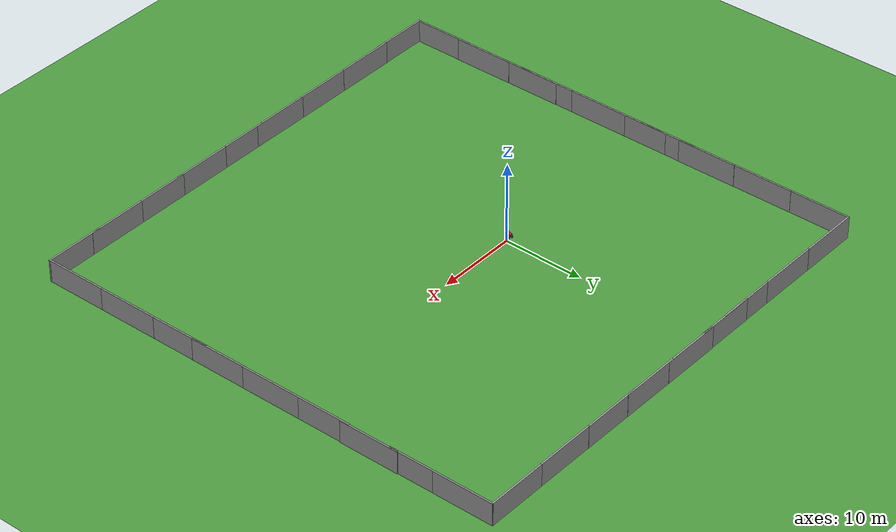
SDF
<sdf version="1.6">
 <world name="default">
  <light name="sun" type="directional">
   <pose>0 0 10 0 -0 0</pose>
   <diffuse>0.8 0.8 0.8 1</diffuse>
   <specular>0.2 0.2 0.2 1</specular>
   <attenuation>
    <range>1000</range>
    <constant>0.9</constant>
    <linear>0.01</linear>
    <quadratic>0.001</quadratic>
   </attenuation>
   <direction>-0.5 0.1 -0.9</direction>
  </light>
  <gravity>0 0 -9.8</gravity>
  <magnetic_field>6e-06 2.3e-05 -4.2e-05</magnetic_field>
  <atmosphere type="adiabatic"/>
  <physics name="default_physics" default="0" type="ode">
   <max_step_size>0.001</max_step_size>
   <real_time_factor>1</real_time_factor>
   <real_time_update_rate>1000</real_time_update_rate>
  </physics>
  <scene><ambient>0.4 0.4 0.4 1</ambient><background>0.7 0.7 0.7 1</background><shadows>1</shadows></scene>
  <spherical_coordinates>
   <surface_model>EARTH_WGS84</surface_model>
   <latitude_deg>0</latitude_deg>
   <longitude_deg>0</longitude_deg>
   <elevation>0</elevation>
   <heading_deg>0</heading_deg>
  </spherical_coordinates>
  <model name="vrc_driving_terrain">
   <static>1</static>
   <link name="grass_plane">
    <collision name="collision">
     <geometry><plane><normal>0 0 1</normal><size>60 60</size></plane></geometry>
     <surface><friction><ode><mu>0.5</mu><mu2>0.5</mu2></ode></friction></surface>
    </collision>
    <visual name="visual_0">
     <cast_shadows>0</cast_shadows>
     <geometry><plane><normal>0 0 1</normal><size>60 60</size></plane></geometry>
     <material>
      <script>
       <uri>model://forest/vrc_driving_terrain/materials/scripts</uri>
       <uri>model://forest/vrc_driving_terrain/materials/textures</uri>
       <name>vrc/grass</name>
      </script>
     </material>
    </visual>
   </link>
   <pose>6.27224 -2.36963 0 0 -0 0</pose>
  </model>
  <model name="grey_wall_clone_10_clone_clone_clone_11_clone_clone_6">
   <static>1</static>
   <link name="link">
    <pose>0 0 1.4 0 -0 0</pose>
    <collision name="collision"><geometry><box><size>7.5 0.2 2.8</size></box></geometry></collision>
    <visual name="visual">
     <cast_shadows>0</cast_shadows>
     <geometry><box><size>7.5 0.2 2.8</size></box></geometry>
     <material>
      <script>
       <uri>model://forest/grey_wall/materials/scripts</uri>
       <uri>model://forest/grey_wall/materials/textures</uri>
       <name>vrc/grey_wall</name>
      </script>
     </material>
    </visual>
   </link>
   <pose>-20.0689 -32.377 0 0 -0 0</pose>
  </model>
  <model name="grey_wall_clone_10_clone_clone_clone_11_clone_clone_7">
   <static>1</static>
   <link name="link">
    <pose>0 0 1.4 0 -0 0</pose>
    <collision name="collision"><geometry><box><size>7.5 0.2 2.8</size></box></geometry></collision>
    <visual name="visual">
     <cast_shadows>0</cast_shadows>
     <geometry><box><size>7.5 0.2 2.8</size></box></geometry>
     <material>
      <script>
       <uri>model://forest/grey_wall/materials/scripts</uri>
       <uri>model://forest/grey_wall/materials/textures</uri>
       <name>vrc/grey_wall</name>
      </script>
     </material>
    </visual>
   </link>
   <pose>-14.0469 -32.337 0 0 -0 0</pose>
  </model>
  <model name="grey_wall_clone_10_clone_clone_clone_11_clone_clone_8">
   <static>1</static>
   <link name="link">
    <pose>0 0 1.4 0 -0 0</pose>
    <collision name="collision"><geometry><box><size>7.5 0.2 2.8</size></box></geometry></collision>
    <visual name="visual">
     <cast_shadows>0</cast_shadows>
     <geometry><box><size>7.5 0.2 2.8</size></box></geometry>
     <material>
      <script>
       <uri>model://forest/grey_wall/materials/scripts</uri>
       <uri>model://forest/grey_wall/materials/textures</uri>
       <name>vrc/grey_wall</name>
      </script>
     </material>
    </visual>
   </link>
   <pose>-6.98097 -32.3403 0 0 -0 0</pose>
  </model>
  <model name="grey_wall_clone_10_clone_clone_clone_11_clone_clone_9">
   <static>1</static>
   <link name="link">
    <pose>0 0 1.4 0 -0 0</pose>
    <collision name="collision"><geometry><box><size>7.5 0.2 2.8</size></box></geometry></collision>
    <visual name="visual">
     <cast_shadows>0</cast_shadows>
     <geometry><box><size>7.5 0.2 2.8</size></box></geometry>
     <material>
      <script>
       <uri>model://forest/grey_wall/materials/scripts</uri>
       <uri>model://forest/grey_wall/materials/textures</uri>
       <name>vrc/grey_wall</name>
      </script>
     </material>
    </visual>
   </link>
   <pose>0.3838 -32.3377 0 0 -0 0</pose>
  </model>
  <model name="grey_wall_clone_10_clone_clone_clone_11_clone_clone_10">
   <static>1</static>
   <link name="link">
    <pose>0 0 1.4 0 -0 0</pose>
    <collision name="collision"><geometry><box><size>7.5 0.2 2.8</size></box></geometry></collision>
    <visual name="visual">
     <cast_shadows>0</cast_shadows>
     <geometry><box><size>7.5 0.2 2.8</size></box></geometry>
     <material>
      <script>
       <uri>model://forest/grey_wall/materials/scripts</uri>
       <uri>model://forest/grey_wall/materials/textures</uri>
       <name>vrc/grey_wall</name>
      </script>
     </material>
    </visual>
   </link>
   <pose>7.10117 -32.3402 0 0 -0 0</pose>
  </model>
  <model name="grey_wall_clone_10_clone_clone_clone_11_clone_clone_11">
   <static>1</static>
   <link name="link">
    <pose>0 0 1.4 0 -0 0</pose>
    <collision name="collision"><geometry><box><size>7.5 0.2 2.8</size></box></geometry></collision>
    <visual name="visual">
     <cast_shadows>0</cast_shadows>
     <geometry><box><size>7.5 0.2 2.8</size></box></geometry>
     <material>
      <script>
       <uri>model://forest/grey_wall/materials/scripts</uri>
       <uri>model://forest/grey_wall/materials/textures</uri>
       <name>vrc/grey_wall</name>
      </script>
     </material>
    </visual>
   </link>
   <pose>19.7031 -32.3238 0 0 -0 0</pose>
  </model>
  <model name="grey_wall_clone_10_clone_clone_clone_11_clone_clone_12">
   <static>1</static>
   <link name="link">
    <pose>0 0 1.4 0 -0 0</pose>
    <collision name="collision"><geometry><box><size>7.5 0.2 2.8</size></box></geometry></collision>
    <visual name="visual">
     <cast_shadows>0</cast_shadows>
     <geometry><box><size>7.5 0.2 2.8</size></box></geometry>
     <material>
      <script>
       <uri>model://forest/grey_wall/materials/scripts</uri>
       <uri>model://forest/grey_wall/materials/textures</uri>
       <name>vrc/grey_wall</name>
      </script>
     </material>
    </visual>
   </link>
   <pose>13.0436 -32.3322 0 0 -0 0</pose>
  </model>
  <model name="grey_wall_clone_10_clone_clone_clone_11_clone_clone_14">
   <static>1</static>
   <link name="link">
    <pose>0 0 1.4 0 -0 0</pose>
    <collision name="collision"><geometry><box><size>7.5 0.2 2.8</size></box></geometry></collision>
    <visual name="visual">
     <cast_shadows>0</cast_shadows>
     <geometry><box><size>7.5 0.2 2.8</size></box></geometry>
     <material>
      <script>
       <uri>model://forest/grey_wall/materials/scripts</uri>
       <uri>model://forest/grey_wall/materials/textures</uri>
       <name>vrc/grey_wall</name>
      </script>
     </material>
    </visual>
   </link>
   <pose>32.4753 -32.3237 0 0 -0 0</pose>
  </model>
  <model name="grey_wall_clone_10_clone_0_clone_4_clone">
   <static>1</static>
   <link name="link">
    <pose>0 0 1.4 0 -0 0</pose>
    <collision name="collision"><geometry><box><size>7.5 0.2 2.8</size></box></geometry></collision>
    <visual name="visual">
     <cast_shadows>0</cast_shadows>
     <geometry><box><size>7.5 0.2 2.8</size></box></geometry>
     <material>
      <script>
       <uri>model://forest/grey_wall/materials/scripts</uri>
       <uri>model://forest/grey_wall/materials/textures</uri>
       <name>vrc/grey_wall</name>
      </script>
     </material>
    </visual>
   </link>
   <pose>36.1029 -28.5226 0 0 0 -1.56932</pose>
  </model>
  <model name="grey_wall_clone_10_clone_0_clone_3_clone">
   <static>1</static>
   <link name="link">
    <pose>0 0 1.4 0 -0 0</pose>
    <collision name="collision"><geometry><box><size>7.5 0.2 2.8</size></box></geometry></collision>
    <visual name="visual">
     <cast_shadows>0</cast_shadows>
     <geometry><box><size>7.5 0.2 2.8</size></box></geometry>
     <material>
      <script>
       <uri>model://forest/grey_wall/materials/scripts</uri>
       <uri>model://forest/grey_wall/materials/textures</uri>
       <name>vrc/grey_wall</name>
      </script>
     </material>
    </visual>
   </link>
   <pose>36.1009 -21.0546 0 0 0 -1.56932</pose>
  </model>
  <model name="grey_wall_clone_10_clone_0_clone_2_clone">
   <static>1</static>
   <link name="link">
    <pose>0 0 1.4 0 -0 0</pose>
    <collision name="collision"><geometry><box><size>7.5 0.2 2.8</size></box></geometry></collision>
    <visual name="visual">
     <cast_shadows>0</cast_shadows>
     <geometry><box><size>7.5 0.2 2.8</size></box></geometry>
     <material>
      <script>
       <uri>model://forest/grey_wall/materials/scripts</uri>
       <uri>model://forest/grey_wall/materials/textures</uri>
       <name>vrc/grey_wall</name>
      </script>
     </material>
    </visual>
   </link>
   <pose>36.0909 -13.5753 0 0 0 -1.56932</pose>
  </model>
  <model name="grey_wall_clone_10_clone_0_clone_1_clone">
   <static>1</static>
   <link name="link">
    <pose>0 0 1.4 0 -0 0</pose>
    <collision name="collision"><geometry><box><size>7.5 0.2 2.8</size></box></geometry></collision>
    <visual name="visual">
     <cast_shadows>0</cast_shadows>
     <geometry><box><size>7.5 0.2 2.8</size></box></geometry>
     <material>
      <script>
       <uri>model://forest/grey_wall/materials/scripts</uri>
       <uri>model://forest/grey_wall/materials/textures</uri>
       <name>vrc/grey_wall</name>
      </script>
     </material>
    </visual>
   </link>
   <pose>36.1079 -8.10384 0 0 0 -1.56932</pose>
  </model>
  <model name="grey_wall_clone_10_clone_0_clone_0_clone">
   <static>1</static>
   <link name="link">
    <pose>0 0 1.4 0 -0 0</pose>
    <collision name="collision"><geometry><box><size>7.5 0.2 2.8</size></box></geometry></collision>
    <visual name="visual">
     <cast_shadows>0</cast_shadows>
     <geometry><box><size>7.5 0.2 2.8</size></box></geometry>
     <material>
      <script>
       <uri>model://forest/grey_wall/materials/scripts</uri>
       <uri>model://forest/grey_wall/materials/textures</uri>
       <name>vrc/grey_wall</name>
      </script>
     </material>
    </visual>
   </link>
   <pose>36.1171 -1.08216 0 0 0 -1.56932</pose>
  </model>
  <model name="grey_wall_clone_10_clone_0_clone_clone">
   <static>1</static>
   <link name="link">
    <pose>0 0 1.4 0 -0 0</pose>
    <collision name="collision"><geometry><box><size>7.5 0.2 2.8</size></box></geometry></collision>
    <visual name="visual">
     <cast_shadows>0</cast_shadows>
     <geometry><box><size>7.5 0.2 2.8</size></box></geometry>
     <material>
      <script>
       <uri>model://forest/grey_wall/materials/scripts</uri>
       <uri>model://forest/grey_wall/materials/textures</uri>
       <name>vrc/grey_wall</name>
      </script>
     </material>
    </visual>
   </link>
   <pose>36.1055 5.65363 0 0 0 -1.56932</pose>
  </model>
  <model name="grey_wall_clone_10_clone_0_clone_12">
   <static>1</static>
   <link name="link">
    <pose>0 0 1.4 0 -0 0</pose>
    <collision name="collision"><geometry><box><size>7.5 0.2 2.8</size></box></geometry></collision>
    <visual name="visual">
     <cast_shadows>0</cast_shadows>
     <geometry><box><size>7.5 0.2 2.8</size></box></geometry>
     <material>
      <script>
       <uri>model://forest/grey_wall/materials/scripts</uri>
       <uri>model://forest/grey_wall/materials/textures</uri>
       <name>vrc/grey_wall</name>
      </script>
     </material>
    </visual>
   </link>
   <pose>36.1794 12.0088 0 0 0 -1.56932</pose>
  </model>
  <model name="grey_wall_clone_10_clone_0_clone_13">
   <static>1</static>
   <link name="link">
    <pose>0 0 1.4 0 -0 0</pose>
    <collision name="collision"><geometry><box><size>7.5 0.2 2.8</size></box></geometry></collision>
    <visual name="visual">
     <cast_shadows>0</cast_shadows>
     <geometry><box><size>7.5 0.2 2.8</size></box></geometry>
     <material>
      <script>
       <uri>model://forest/grey_wall/materials/scripts</uri>
       <uri>model://forest/grey_wall/materials/textures</uri>
       <name>vrc/grey_wall</name>
      </script>
     </material>
    </visual>
   </link>
   <pose>36.0952 23.8909 0 0 0 -1.56932</pose>
  </model>
  <model name="grey_wall_clone_10_clone_clone_6">
   <static>1</static>
   <link name="link">
    <pose>0 0 1.4 0 -0 0</pose>
    <collision name="collision"><geometry><box><size>7.5 0.2 2.8</size></box></geometry></collision>
    <visual name="visual">
     <cast_shadows>0</cast_shadows>
     <geometry><box><size>7.5 0.2 2.8</size></box></geometry>
     <material>
      <script>
       <uri>model://forest/grey_wall/materials/scripts</uri>
       <uri>model://forest/grey_wall/materials/textures</uri>
       <name>vrc/grey_wall</name>
      </script>
     </material>
    </visual>
   </link>
   <pose>32.3871 27.6022 0 0 -0 0</pose>
  </model>
  <model name="grey_wall_clone_10_clone_clone_7">
   <static>1</static>
   <link name="link">
    <pose>0 0 1.4 0 -0 0</pose>
    <collision name="collision"><geometry><box><size>7.5 0.2 2.8</size></box></geometry></collision>
    <visual name="visual">
     <cast_shadows>0</cast_shadows>
     <geometry><box><size>7.5 0.2 2.8</size></box></geometry>
     <material>
      <script>
       <uri>model://forest/grey_wall/materials/scripts</uri>
       <uri>model://forest/grey_wall/materials/textures</uri>
       <name>vrc/grey_wall</name>
      </script>
     </material>
    </visual>
   </link>
   <pose>24.9042 27.5875 0 0 -0 0</pose>
  </model>
  <model name="grey_wall_clone_10_clone_clone_8">
   <static>1</static>
   <link name="link">
    <pose>0 0 1.4 0 -0 0</pose>
    <collision name="collision"><geometry><box><size>7.5 0.2 2.8</size></box></geometry></collision>
    <visual name="visual">
     <cast_shadows>0</cast_shadows>
     <geometry><box><size>7.5 0.2 2.8</size></box></geometry>
     <material>
      <script>
       <uri>model://forest/grey_wall/materials/scripts</uri>
       <uri>model://forest/grey_wall/materials/textures</uri>
       <name>vrc/grey_wall</name>
      </script>
     </material>
    </visual>
   </link>
   <pose>17.5062 27.6094 0 0 -0 0</pose>
  </model>
  <model name="grey_wall_clone_10_clone_clone_9">
   <static>1</static>
   <link name="link">
    <pose>0 0 1.4 0 -0 0</pose>
    <collision name="collision"><geometry><box><size>7.5 0.2 2.8</size></box></geometry></collision>
    <visual name="visual">
     <cast_shadows>0</cast_shadows>
     <geometry><box><size>7.5 0.2 2.8</size></box></geometry>
     <material>
      <script>
       <uri>model://forest/grey_wall/materials/scripts</uri>
       <uri>model://forest/grey_wall/materials/textures</uri>
       <name>vrc/grey_wall</name>
      </script>
     </material>
    </visual>
   </link>
   <pose>11.1913 27.6263 0 0 -0 0</pose>
  </model>
  <model name="grey_wall_clone_10_clone_clone_10">
   <static>1</static>
   <link name="link">
    <pose>0 0 1.4 0 -0 0</pose>
    <collision name="collision"><geometry><box><size>7.5 0.2 2.8</size></box></geometry></collision>
    <visual name="visual">
     <cast_shadows>0</cast_shadows>
     <geometry><box><size>7.5 0.2 2.8</size></box></geometry>
     <material>
      <script>
       <uri>model://forest/grey_wall/materials/scripts</uri>
       <uri>model://forest/grey_wall/materials/textures</uri>
       <name>vrc/grey_wall</name>
      </script>
     </material>
    </visual>
   </link>
   <pose>4.39213 27.6355 0 0 -0 0</pose>
  </model>
  <model name="grey_wall_clone_10_clone_clone_11">
   <static>1</static>
   <link name="link">
    <pose>0 0 1.4 0 -0 0</pose>
    <collision name="collision"><geometry><box><size>7.5 0.2 2.8</size></box></geometry></collision>
    <visual name="visual">
     <cast_shadows>0</cast_shadows>
     <geometry><box><size>7.5 0.2 2.8</size></box></geometry>
     <material>
      <script>
       <uri>model://forest/grey_wall/materials/scripts</uri>
       <uri>model://forest/grey_wall/materials/textures</uri>
       <name>vrc/grey_wall</name>
      </script>
     </material>
    </visual>
   </link>
   <pose>-5.36662 27.5533 0 0 -0 0</pose>
  </model>
  <model name="grey_wall_clone_10_clone_clone_12">
   <static>1</static>
   <link name="link">
    <pose>0 0 1.4 0 -0 0</pose>
    <collision name="collision"><geometry><box><size>7.5 0.2 2.8</size></box></geometry></collision>
    <visual name="visual">
     <cast_shadows>0</cast_shadows>
     <geometry><box><size>7.5 0.2 2.8</size></box></geometry>
     <material>
      <script>
       <uri>model://forest/grey_wall/materials/scripts</uri>
       <uri>model://forest/grey_wall/materials/textures</uri>
       <name>vrc/grey_wall</name>
      </script>
     </material>
    </visual>
   </link>
   <pose>-12.7191 27.5554 0 0 -0 0</pose>
  </model>
  <model name="grey_wall_clone_10_clone_clone_14">
   <static>1</static>
   <link name="link">
    <pose>0 0 1.4 0 -0 0</pose>
    <collision name="collision"><geometry><box><size>7.5 0.2 2.8</size></box></geometry></collision>
    <visual name="visual">
     <cast_shadows>0</cast_shadows>
     <geometry><box><size>7.5 0.2 2.8</size></box></geometry>
     <material>
      <script>
       <uri>model://forest/grey_wall/materials/scripts</uri>
       <uri>model://forest/grey_wall/materials/textures</uri>
       <name>vrc/grey_wall</name>
      </script>
     </material>
    </visual>
   </link>
   <pose>-20.152 27.5651 0 0 -0 0</pose>
  </model>
  <model name="grey_wall_clone_10_clone_0_clone_5_clone_12_clone_8">
   <static>1</static>
   <link name="link">
    <pose>0 0 1.4 0 -0 0</pose>
    <collision name="collision"><geometry><box><size>7.5 0.2 2.8</size></box></geometry></collision>
    <visual name="visual">
     <cast_shadows>0</cast_shadows>
     <geometry><box><size>7.5 0.2 2.8</size></box></geometry>
     <material>
      <script>
       <uri>model://forest/grey_wall/materials/scripts</uri>
       <uri>model://forest/grey_wall/materials/textures</uri>
       <name>vrc/grey_wall</name>
      </script>
     </material>
    </visual>
   </link>
   <pose>-23.8162 23.8834 0 0 0 -1.56932</pose>
  </model>
  <model name="grey_wall_clone_10_clone_0_clone_5_clone_12_clone_9">
   <static>1</static>
   <link name="link">
    <pose>0 0 1.4 0 -0 0</pose>
    <collision name="collision"><geometry><box><size>7.5 0.2 2.8</size></box></geometry></collision>
    <visual name="visual">
     <cast_shadows>0</cast_shadows>
     <geometry><box><size>7.5 0.2 2.8</size></box></geometry>
     <material>
      <script>
       <uri>model://forest/grey_wall/materials/scripts</uri>
       <uri>model://forest/grey_wall/materials/textures</uri>
       <name>vrc/grey_wall</name>
      </script>
     </material>
    </visual>
   </link>
   <pose>-23.7899 16.4201 0 0 0 -1.56932</pose>
  </model>
  <model name="grey_wall_clone_10_clone_0_clone_5_clone_12_clone_10">
   <static>1</static>
   <link name="link">
    <pose>0 0 1.4 0 -0 0</pose>
    <collision name="collision"><geometry><box><size>7.5 0.2 2.8</size></box></geometry></collision>
    <visual name="visual">
     <cast_shadows>0</cast_shadows>
     <geometry><box><size>7.5 0.2 2.8</size></box></geometry>
     <material>
      <script>
       <uri>model://forest/grey_wall/materials/scripts</uri>
       <uri>model://forest/grey_wall/materials/textures</uri>
       <name>vrc/grey_wall</name>
      </script>
     </material>
    </visual>
   </link>
   <pose>-23.7486 8.93927 0 0 0 -1.56932</pose>
  </model>
  <model name="grey_wall_clone_10_clone_0_clone_5_clone_12_clone_11">
   <static>1</static>
   <link name="link">
    <pose>0 0 1.4 0 -0 0</pose>
    <collision name="collision"><geometry><box><size>7.5 0.2 2.8</size></box></geometry></collision>
    <visual name="visual">
     <cast_shadows>0</cast_shadows>
     <geometry><box><size>7.5 0.2 2.8</size></box></geometry>
     <material>
      <script>
       <uri>model://forest/grey_wall/materials/scripts</uri>
       <uri>model://forest/grey_wall/materials/textures</uri>
       <name>vrc/grey_wall</name>
      </script>
     </material>
    </visual>
   </link>
   <pose>-23.7488 -0.411981 0 0 0 -1.56932</pose>
  </model>
  <model name="grey_wall_clone_10_clone_0_clone_5_clone_12_clone_12">
   <static>1</static>
   <link name="link">
    <pose>0 0 1.4 0 -0 0</pose>
    <collision name="collision"><geometry><box><size>7.5 0.2 2.8</size></box></geometry></collision>
    <visual name="visual">
     <cast_shadows>0</cast_shadows>
     <geometry><box><size>7.5 0.2 2.8</size></box></geometry>
     <material>
      <script>
       <uri>model://forest/grey_wall/materials/scripts</uri>
       <uri>model://forest/grey_wall/materials/textures</uri>
       <name>vrc/grey_wall</name>
      </script>
     </material>
    </visual>
   </link>
   <pose>-23.7368 -6.04779 0 0 0 -1.56932</pose>
  </model>
  <model name="grey_wall_clone_10_clone_0_clone_5_clone_12_clone_13">
   <static>1</static>
   <link name="link">
    <pose>0 0 1.4 0 -0 0</pose>
    <collision name="collision"><geometry><box><size>7.5 0.2 2.8</size></box></geometry></collision>
    <visual name="visual">
     <cast_shadows>0</cast_shadows>
     <geometry><box><size>7.5 0.2 2.8</size></box></geometry>
     <material>
      <script>
       <uri>model://forest/grey_wall/materials/scripts</uri>
       <uri>model://forest/grey_wall/materials/textures</uri>
       <name>vrc/grey_wall</name>
      </script>
     </material>
    </visual>
   </link>
   <pose>-23.7298 -13.5026 0 0 0 -1.56932</pose>
  </model>
  <model name="grey_wall_clone_10_clone_0_clone_5_clone_12_clone_14">
   <static>1</static>
   <link name="link">
    <pose>0 0 1.4 0 -0 0</pose>
    <collision name="collision"><geometry><box><size>7.5 0.2 2.8</size></box></geometry></collision>
    <visual name="visual">
     <cast_shadows>0</cast_shadows>
     <geometry><box><size>7.5 0.2 2.8</size></box></geometry>
     <material>
      <script>
       <uri>model://forest/grey_wall/materials/scripts</uri>
       <uri>model://forest/grey_wall/materials/textures</uri>
       <name>vrc/grey_wall</name>
      </script>
     </material>
    </visual>
   </link>
   <pose>-23.7024 -28.5538 0 0 0 -1.56932</pose>
  </model>
  <model name="grey_wall_clone_10_clone_0_clone_5_clone_12_clone_15">
   <static>1</static>
   <link name="link">
    <pose>0 0 1.4 0 -0 0</pose>
    <collision name="collision"><geometry><box><size>7.5 0.2 2.8</size></box></geometry></collision>
    <visual name="visual">
     <cast_shadows>0</cast_shadows>
     <geometry><box><size>7.5 0.2 2.8</size></box></geometry>
     <material>
      <script>
       <uri>model://forest/grey_wall/materials/scripts</uri>
       <uri>model://forest/grey_wall/materials/textures</uri>
       <name>vrc/grey_wall</name>
      </script>
     </material>
    </visual>
   </link>
   <pose>-23.6973 -15.7824 0 0 0 -1.56932</pose>
  </model>
  <audio><device>default</device></audio>
  <model name="camera">
   <link name="camera">
    <inertial>
     <mass>1e-05</mass>
     <inertia><ixx>1e-06</ixx><ixy>0</ixy><ixz>0</ixz><iyy>1e-06</iyy><iyz>0</iyz><izz>1e-06</izz></inertia>
    </inertial>
    <collision name="camera_collision"><geometry><box><size>0.001 0.001 0.001</size></box></geometry></collision>
    <visual name="camera_visual">
     <geometry><box><size>0.001 0.001 0.001</size></box></geometry>
     <material><script><uri>__default__</uri><name>__default__</name></script></material>
    </visual>
    <sensor name="camera" type="camera">
     <update_rate>15</update_rate>
     <camera name="head">
      <horizontal_fov>2</horizontal_fov>
      <image><width>320</width><height>180</height><format>R8G8B8</format></image>
      <clip><near>0.1</near><far>200</far></clip>
     </camera>
     <plugin name="camera_controller" filename="libgazebo_ros_camera.so">
      <alwaysOn>1</alwaysOn>
      <updateRate>0.0</updateRate>
      <cameraName>camera</cameraName>
      <imageTopicName>image</imageTopicName>
      <cameraInfoTopicName>camera_info</cameraInfoTopicName>
      <frameName>camera</frameName>
      <hackBaseline>0.0</hackBaseline>
      <distortionK1>0.0</distortionK1>
      <distortionK2>0.0</distortionK2>
      <distortionK3>0.0</distortionK3>
      <distortionT1>0.0</distortionT1>
      <distortionT2>0.0</distortionT2>
      <robotNamespace>/</robotNamespace>
     </plugin>
    </sensor>
   </link>
   <pose>-0.766021 -0.279987 0.749372 -2e-06 3e-06 -0.389001</pose>
  </model>
  <model name="robot">
   <link name="base_origin">
    <inertial>
     <pose>0 0 -0.5125 0 -0 0</pose>
     <mass>6e-05</mass>
     <inertia>
      <ixx>9.94687e-06</ixx>
      <ixy>0</ixy>
      <ixz>0</ixz>
      <iyy>9.04688e-06</iyy>
      <iyz>-1.58819e-23</iyz>
      <izz>1.01e-05</izz>
     </inertia>
    </inertial>
    <visual name="base_origin_fixed_joint_lump__base_link_visual">
     <pose>0 0 -0.5 0 -0 0</pose>
     <geometry><box><size>0.6 0.4 0.3</size></box></geometry>
     <material>
      <script><name>Gazebo/Red</name><uri>file://media/materials/scripts/gazebo.material</uri></script>
     </material>
    </visual>
    <visual name="base_origin_fixed_joint_lump__left_front_wheel_visual_1">
     <pose>0.2 -0.25 -0.6 1.57 -0 0</pose>
     <geometry><cylinder><length>0.1</length><radius>0.15</radius></cylinder></geometry>
     <material>
      <script><name>Gazebo/Black</name><uri>file://media/materials/scripts/gazebo.material</uri></script>
     </material>
    </visual>
    <visual name="base_origin_fixed_joint_lump__left_rear_wheel_visual_2">
     <pose>-0.2 -0.25 -0.6 1.57 -0 0</pose>
     <geometry><cylinder><length>0.1</length><radius>0.15</radius></cylinder></geometry>
     <material>
      <script><name>Gazebo/Black</name><uri>file://media/materials/scripts/gazebo.material</uri></script>
     </material>
    </visual>
    <visual name="base_origin_fixed_joint_lump__right_rear_wheel_visual_3">
     <pose>-0.2 0.25 -0.6 -1.57 0 0</pose>
     <geometry><cylinder><length>0.1</length><radius>0.15</radius></cylinder></geometry>
     <material>
      <script><name>Gazebo/Black</name><uri>file://media/materials/scripts/gazebo.material</uri></script>
     </material>
    </visual>
    <visual name="base_origin_fixed_joint_lump__right_front_wheel_visual_4">
     <pose>0.2 0.25 -0.6 -1.57 0 0</pose>
     <geometry><cylinder><length>0.1</length><radius>0.15</radius></cylinder></geometry>
     <material>
      <script><name>Gazebo/Black</name><uri>file://media/materials/scripts/gazebo.material</uri></script>
     </material>
    </visual>
    <visual name="base_origin_fixed_joint_lump__lidar_holder_visual_5">
     <pose>0 0 -0.175 0 -0 0</pose>
     <geometry><cylinder><length>0.35</length><radius>0.03</radius></cylinder></geometry>
     <material>
      <script><name>Gazebo/Black</name><uri>file://media/materials/scripts/gazebo.material</uri></script>
     </material>
    </visual>
   </link>
   <pose>-0.766021 -0.279987 0.749902 0 0 -0.389001</pose>
  </model>
  <model name="grey_wall_clone_10_clone_clone_11_clone">
   <static>1</static>
   <link name="link">
    <pose>0 0 1.4 0 -0 0</pose>
    <collision name="collision"><geometry><box><size>7.5 0.2 2.8</size></box></geometry></collision>
    <visual name="visual">
     <cast_shadows>0</cast_shadows>
     <geometry><box><size>7.5 0.2 2.8</size></box></geometry>
     <material>
      <script>
       <uri>model://forest/grey_wall/materials/scripts</uri>
       <uri>model://forest/grey_wall/materials/textures</uri>
       <name>vrc/grey_wall</name>
      </script>
     </material>
    </visual>
   </link>
   <pose>-1.59891 27.5825 0 0 -0 0</pose>
  </model>
  <model name="grey_wall_clone_10_clone_0_clone_13_clone">
   <static>1</static>
   <link name="link">
    <pose>0 0 1.4 0 -0 0</pose>
    <collision name="collision"><geometry><box><size>7.5 0.2 2.8</size></box></geometry></collision>
    <visual name="visual">
     <cast_shadows>0</cast_shadows>
     <geometry><box><size>7.5 0.2 2.8</size></box></geometry>
     <material>
      <script>
       <uri>model://forest/grey_wall/materials/scripts</uri>
       <uri>model://forest/grey_wall/materials/textures</uri>
       <name>vrc/grey_wall</name>
      </script>
     </material>
    </visual>
   </link>
   <pose>36.0988 18.3028 0 0 0 -1.56932</pose>
  </model>
  <model name="grey_wall_clone_10_clone_clone_clone_11_clone_clone_12_clone">
   <static>1</static>
   <link name="link">
    <pose>0 0 1.4 0 -0 0</pose>
    <collision name="collision"><geometry><box><size>7.5 0.2 2.8</size></box></geometry></collision>
    <visual name="visual">
     <cast_shadows>0</cast_shadows>
     <geometry><box><size>7.5 0.2 2.8</size></box></geometry>
     <material>
      <script>
       <uri>model://forest/grey_wall/materials/scripts</uri>
       <uri>model://forest/grey_wall/materials/textures</uri>
       <name>vrc/grey_wall</name>
      </script>
     </material>
    </visual>
   </link>
   <pose>26.1967 -32.3206 0 0 -0 0</pose>
  </model>
  <model name="grey_wall_clone_10_clone_0_clone_5_clone_12_clone_14_clone">
   <static>1</static>
   <link name="link">
    <pose>0 0 1.4 0 -0 0</pose>
    <collision name="collision"><geometry><box><size>7.5 0.2 2.8</size></box></geometry></collision>
    <visual name="visual">
     <cast_shadows>0</cast_shadows>
     <geometry><box><size>7.5 0.2 2.8</size></box></geometry>
     <material>
      <script>
       <uri>model://forest/grey_wall/materials/scripts</uri>
       <uri>model://forest/grey_wall/materials/textures</uri>
       <name>vrc/grey_wall</name>
      </script>
     </material>
    </visual>
   </link>
   <pose>-23.6719 -22.6472 0 0 0 -1.56932</pose>
  </model>
  <model name="grey_wall_clone_10_clone_0_clone_5_clone_12_clone_11_clone">
   <static>1</static>
   <link name="link">
    <pose>0 0 1.4 0 -0 0</pose>
    <collision name="collision"><geometry><box><size>7.5 0.2 2.8</size></box></geometry></collision>
    <visual name="visual">
     <cast_shadows>0</cast_shadows>
     <geometry><box><size>7.5 0.2 2.8</size></box></geometry>
     <material>
      <script>
       <uri>model://forest/grey_wall/materials/scripts</uri>
       <uri>model://forest/grey_wall/materials/textures</uri>
       <name>vrc/grey_wall</name>
      </script>
     </material>
    </visual>
   </link>
   <pose>-23.7619 3.61269 0 0 0 -1.56932</pose>
  </model>
 </world>
</sdf>
